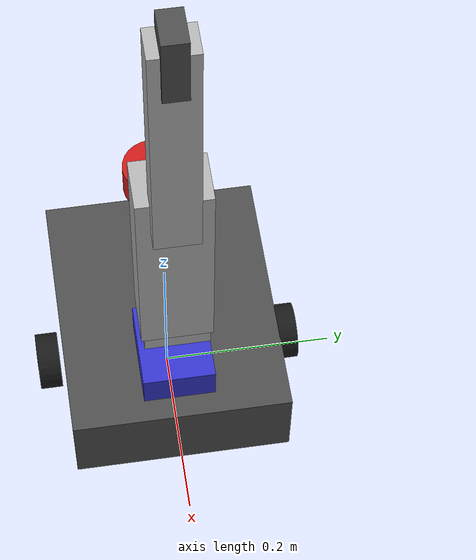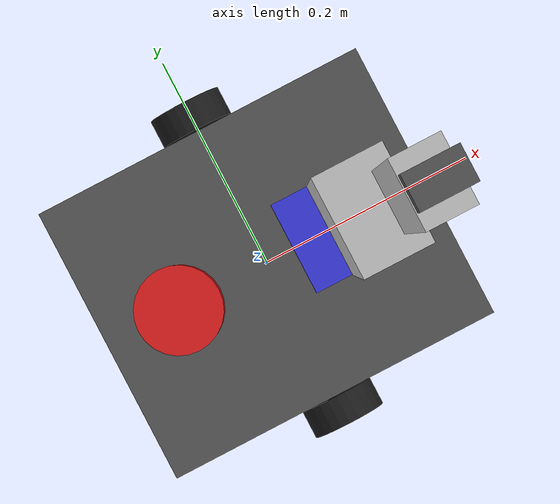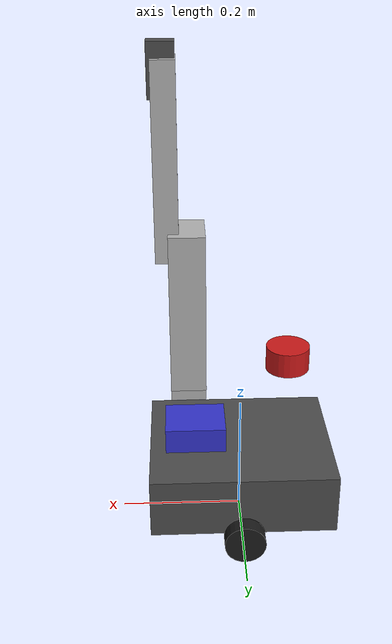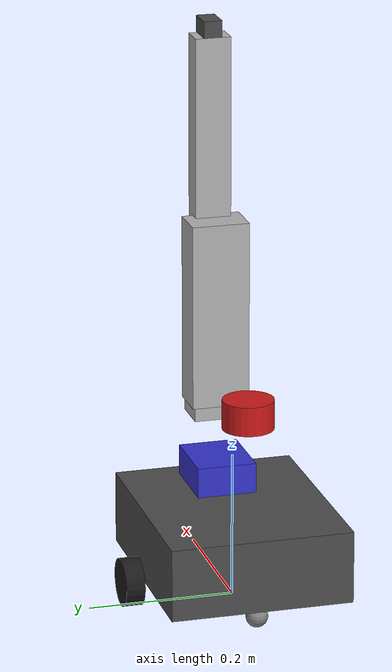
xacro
<?xml version="1.0"?>
<robot xmlns:xacro="http://www.ros.org/wiki/xacro" name="smart_robot_arm">

  <!--  SmartRobotArm v1 Robot Description                          -->
  <!--  Inherited from soma_home_exp_v1 (mobile manipulator URDF).  -->
  <!--  v1 hardware is a FIXED tabletop manipulator: only the       -->
  <!--  RoArm-M2-S (4-DOF) + the overhead Logitech C922 are real.   -->
  <!--  The chassis + LiDAR links are kept here for the optional    -->
  <!--  Gazebo dry-run scene; they do NOT correspond to v1 real     -->
  <!--  hardware. v2/v3 may re-introduce a mobile base.             -->
  <!--  Arm parameters sourced from official Waveshare URDF:        -->
  <!--  github.com/waveshareteam/roarm_ws_em0                       -->

  <!-- ==================== Chassis Parameters ==================== -->
  <xacro:property name="chassis_length" value="0.30"/>
  <xacro:property name="chassis_width"  value="0.25"/>
  <xacro:property name="chassis_height" value="0.10"/>
  <xacro:property name="chassis_mass"   value="3.0"/>

  <xacro:property name="wheel_radius"     value="0.033"/>
  <xacro:property name="wheel_width"      value="0.026"/>
  <xacro:property name="wheel_mass"       value="0.1"/>
  <xacro:property name="wheel_separation" value="0.287"/>
  <xacro:property name="caster_radius"    value="0.015"/>

  <!-- ==================== RoArm-M2-S Parameters (from official URDF) ==================== -->
  <!-- Base to J1 axis height: 123.059mm -->
  <xacro:property name="arm_base_height"    value="0.123059"/>
  <!-- Base X offset: 10mm -->
  <xacro:property name="arm_base_x_offset"  value="0.010"/>
  <!-- Upper arm length (J2 to J3): 236.815mm -->
  <xacro:property name="arm_upper_length"   value="0.236815"/>
  <!-- J2-J3 Y offset: 30.002mm -->
  <xacro:property name="arm_upper_y_offset" value="0.030002"/>
  <!-- Forearm length (J3 to gripper): 215.99mm -->
  <xacro:property name="arm_forearm_length" value="0.21599"/>
  <!-- J3 to TCP: 280.2mm -->
  <xacro:property name="arm_tcp_length"     value="0.2802"/>
  <!-- Gripper offset from J3 -->
  <xacro:property name="gripper_x_offset"   value="0.002906"/>
  <xacro:property name="gripper_z_offset"   value="-0.000667"/>

  <!-- ST3215 servo specs: stall torque 2.94 N·m, no-load speed 4.71 rad/s -->
  <xacro:property name="servo_effort"   value="2.94"/>
  <xacro:property name="servo_velocity" value="4.71"/>

  <!-- ==================== Inertia Macros ==================== -->
  <xacro:macro name="box_inertia" params="m x y z">
    <inertial>
      <mass value="${m}"/>
      <inertia ixx="${m*(y*y+z*z)/12}" ixy="0" ixz="0"
               iyy="${m*(x*x+z*z)/12}" iyz="0"
               izz="${m*(x*x+y*y)/12}"/>
    </inertial>
  </xacro:macro>

  <xacro:macro name="cylinder_inertia" params="m r h">
    <inertial>
      <mass value="${m}"/>
      <inertia ixx="${m*(3*r*r+h*h)/12}" ixy="0" ixz="0"
               iyy="${m*(3*r*r+h*h)/12}" iyz="0"
               izz="${m*r*r/2}"/>
    </inertial>
  </xacro:macro>

  <xacro:macro name="sphere_inertia" params="m r">
    <inertial>
      <mass value="${m}"/>
      <inertia ixx="${2*m*r*r/5}" ixy="0" ixz="0"
               iyy="${2*m*r*r/5}" iyz="0"
               izz="${2*m*r*r/5}"/>
    </inertial>
  </xacro:macro>

  <!-- ==================== Base Link (Chassis) ==================== -->
  <link name="base_footprint"/>

  <link name="base_link">
    <visual>
      <geometry>
        <box size="${chassis_length} ${chassis_width} ${chassis_height}"/>
      </geometry>
      <material name="dark_grey">
        <color rgba="0.3 0.3 0.3 1.0"/>
      </material>
    </visual>
    <collision>
      <geometry>
        <box size="${chassis_length} ${chassis_width} ${chassis_height}"/>
      </geometry>
    </collision>
    <xacro:box_inertia m="${chassis_mass}" x="${chassis_length}" y="${chassis_width}" z="${chassis_height}"/>
  </link>

  <joint name="base_footprint_joint" type="fixed">
    <parent link="base_footprint"/>
    <child link="base_link"/>
    <origin xyz="0 0 ${wheel_radius + chassis_height/2}" rpy="0 0 0"/>
  </joint>

  <!-- ==================== Wheels ==================== -->
  <xacro:macro name="wheel" params="prefix y_offset">
    <link name="${prefix}_wheel">
      <visual>
        <geometry>
          <cylinder radius="${wheel_radius}" length="${wheel_width}"/>
        </geometry>
        <material name="black">
          <color rgba="0.1 0.1 0.1 1.0"/>
        </material>
      </visual>
      <collision>
        <geometry>
          <cylinder radius="${wheel_radius}" length="${wheel_width}"/>
        </geometry>
      </collision>
      <xacro:cylinder_inertia m="${wheel_mass}" r="${wheel_radius}" h="${wheel_width}"/>
    </link>

    <joint name="${prefix}_wheel_joint" type="continuous">
      <parent link="base_link"/>
      <child link="${prefix}_wheel"/>
      <origin xyz="0 ${y_offset} ${-chassis_height/2}" rpy="${-pi/2} 0 0"/>
      <axis xyz="0 0 1"/>
      <dynamics damping="0.01" friction="0.1"/>
    </joint>
  </xacro:macro>

  <xacro:wheel prefix="left"  y_offset="${wheel_separation/2}"/>
  <xacro:wheel prefix="right" y_offset="${-wheel_separation/2}"/>

  <!-- Caster wheel -->
  <link name="caster_wheel">
    <visual>
      <geometry><sphere radius="${caster_radius}"/></geometry>
      <material name="grey"><color rgba="0.5 0.5 0.5 1.0"/></material>
    </visual>
    <collision>
      <geometry><sphere radius="${caster_radius}"/></geometry>
    </collision>
    <xacro:sphere_inertia m="0.05" r="${caster_radius}"/>
  </link>

  <joint name="caster_wheel_joint" type="fixed">
    <parent link="base_link"/>
    <child link="caster_wheel"/>
    <origin xyz="${-chassis_length/2 + 0.03} 0 ${-chassis_height/2 - wheel_radius + caster_radius}" rpy="0 0 0"/>
  </joint>

  <!-- ==================== LiDAR (RPLiDAR A1) ==================== -->
  <link name="lidar_link">
    <visual>
      <geometry><cylinder radius="0.035" length="0.04"/></geometry>
      <material name="red"><color rgba="0.8 0.1 0.1 1.0"/></material>
    </visual>
    <collision>
      <geometry><cylinder radius="0.035" length="0.04"/></geometry>
    </collision>
    <xacro:cylinder_inertia m="0.17" r="0.035" h="0.04"/>
  </link>

  <joint name="lidar_joint" type="fixed">
    <parent link="base_link"/>
    <child link="lidar_link"/>
    <origin xyz="${-chassis_length/4} 0 ${chassis_height/2 + arm_base_height + 0.03}" rpy="0 0 0"/>
  </joint>

  <!-- ==================== Camera (RPi Camera Module 3) ==================== -->
  <link name="camera_link">
    <visual>
      <geometry><box size="0.025 0.024 0.012"/></geometry>
      <material name="green"><color rgba="0.1 0.6 0.1 1.0"/></material>
    </visual>
    <collision>
      <geometry><box size="0.025 0.024 0.012"/></geometry>
    </collision>
    <xacro:box_inertia m="0.02" x="0.025" y="0.024" z="0.012"/>
  </link>

  <link name="camera_optical_frame"/>

  <joint name="camera_joint" type="fixed">
    <parent link="base_link"/>
    <child link="camera_link"/>
    <origin xyz="${chassis_length/4} 0 ${chassis_height/2 + 0.15}" rpy="0 0.3 0"/>
  </joint>

  <joint name="camera_optical_joint" type="fixed">
    <parent link="camera_link"/>
    <child link="camera_optical_frame"/>
    <origin xyz="0 0 0" rpy="${-pi/2} 0 ${-pi/2}"/>
  </joint>

  <!--  RoArm-M2-S Arm (4-DOF)                                     -->
  <!--  Kinematic chain matches official Waveshare URDF exactly     -->
  <!--  Joint names kept compatible with roarm_ws_em0               -->

  <!-- Arm base: fixed to chassis top plate, front-center -->
  <link name="arm_base_link">
    <visual>
      <geometry><box size="0.0985 0.0816 0.0836"/></geometry>
      <material name="blue"><color rgba="0.2 0.2 0.8 1.0"/></material>
    </visual>
    <collision>
      <geometry><box size="0.0985 0.0816 0.0836"/></geometry>
    </collision>
    <inertial>
      <origin xyz="0.003738 0 0.026427"/>
      <mass value="0.3264"/>
      <inertia ixx="0.000224" ixy="0" ixz="-0.0000299"
               iyy="0.000287" iyz="0"
               izz="0.000350"/>
    </inertial>
  </link>

  <joint name="arm_base_joint" type="fixed">
    <parent link="base_link"/>
    <child link="arm_base_link"/>
    <origin xyz="${chassis_length/4} 0 ${chassis_height/2}" rpy="0 0 0"/>
  </joint>

  <!-- Joint 1: Base rotation — 360° (±180°) around Z axis -->
  <link name="arm_link1">
    <visual>
      <geometry><box size="0.0548 0.0724 0.0496"/></geometry>
      <material name="silver"><color rgba="0.7 0.7 0.7 1.0"/></material>
    </visual>
    <collision>
      <geometry><box size="0.0548 0.0724 0.0496"/></geometry>
    </collision>
    <inertial>
      <origin xyz="0 0.0000097 -0.014667"/>
      <mass value="0.0929"/>
      <inertia ixx="0.0000609" ixy="0" ixz="0"
               iyy="0.0000253" iyz="0"
               izz="0.0000488"/>
    </inertial>
  </link>

  <joint name="base_link_to_link1" type="revolute">
    <parent link="arm_base_link"/>
    <child link="arm_link1"/>
    <origin xyz="${arm_base_x_offset} 0 ${arm_base_height}" rpy="0 0 0"/>
    <axis xyz="0 0 -1"/>
    <limit lower="${-pi}" upper="${pi}" effort="${servo_effort}" velocity="${servo_velocity}"/>
    <dynamics damping="0.1" friction="0.05"/>
  </joint>

  <!-- Joint 2: Shoulder pitch — 180° (±90°) -->
  <link name="arm_link2">
    <visual>
      <origin xyz="0.122021 0.000066 -0.000095"/>
      <geometry><box size="0.2568 0.0555 0.0790"/></geometry>
      <material name="silver"/>
    </visual>
    <collision>
      <origin xyz="0.122021 0 0"/>
      <geometry><box size="0.2568 0.0555 0.0790"/></geometry>
    </collision>
    <inertial>
      <origin xyz="0.122021 0.000066 -0.000095"/>
      <mass value="0.0896"/>
      <inertia ixx="0.0000263" ixy="-0.00000255" ixz="0"
               iyy="0.000350" iyz="0"
               izz="0.000333"/>
    </inertial>
  </link>

  <joint name="link1_to_link2" type="revolute">
    <parent link="arm_link1"/>
    <child link="arm_link2"/>
    <origin xyz="0 0 0" rpy="${-pi/2} ${-pi/2} 0"/>
    <axis xyz="0 0 -1"/>
    <limit lower="${-pi/2}" upper="${pi/2}" effort="${servo_effort*2}" velocity="${servo_velocity}"/>
    <dynamics damping="0.1" friction="0.05"/>
  </joint>

  <!-- Joint 3: Elbow pitch — from -57.3° to +180° -->
  <link name="arm_link3">
    <visual>
      <origin xyz="-0.000763 -0.114420 -0.000177"/>
      <geometry><box size="0.0355 0.2939 0.0488"/></geometry>
      <material name="silver"/>
    </visual>
    <collision>
      <origin xyz="0 -0.114420 0"/>
      <geometry><box size="0.0355 0.2939 0.0488"/></geometry>
    </collision>
    <inertial>
      <origin xyz="-0.000763 -0.114420 -0.000177"/>
      <mass value="0.1230"/>
      <inertia ixx="0.000104" ixy="0" ixz="0"
               iyy="0.0000146" iyz="0"
               izz="0.000104"/>
    </inertial>
  </link>

  <joint name="link2_to_link3" type="revolute">
    <parent link="arm_link2"/>
    <child link="arm_link3"/>
    <origin xyz="${arm_upper_length} ${arm_upper_y_offset} 0" rpy="0 0 ${pi/2}"/>
    <axis xyz="0 0 1"/>
    <limit lower="-1.0" upper="${pi}" effort="${servo_effort}" velocity="${servo_velocity}"/>
    <dynamics damping="0.08" friction="0.04"/>
  </joint>

  <!-- Joint 4: Gripper — 0 to 85.9° (0=closed, 1.5rad=open) -->
  <link name="gripper_link">
    <visual>
      <origin xyz="0.028886 -0.000777 -0.000780"/>
      <geometry><box size="0.0779 0.0252 0.0394"/></geometry>
      <material name="dark_grey"><color rgba="0.3 0.3 0.3 1.0"/></material>
    </visual>
    <collision>
      <origin xyz="0.028886 0 0"/>
      <geometry><box size="0.0779 0.0252 0.0394"/></geometry>
    </collision>
    <inertial>
      <origin xyz="0.028886 -0.000777 -0.000780"/>
      <mass value="0.00366"/>
      <inertia ixx="0.00000115" ixy="0.000000131" ixz="0"
               iyy="0.00000233" iyz="0"
               izz="0.00000147"/>
    </inertial>
  </link>

  <joint name="link3_to_gripper_link" type="revolute">
    <parent link="arm_link3"/>
    <child link="gripper_link"/>
    <origin xyz="${gripper_x_offset} ${-arm_forearm_length} ${gripper_z_offset}" rpy="${-pi/2} 0 ${-pi/2}"/>
    <axis xyz="0 0 1"/>
    <limit lower="0" upper="1.5" effort="${servo_effort}" velocity="${servo_velocity}"/>
    <dynamics damping="0.05" friction="0.03"/>
  </joint>

  <!-- TCP (Tool Center Point) — the actual grasp reference point -->
  <link name="hand_tcp"/>

  <joint name="link3_to_hand_tcp" type="fixed">
    <parent link="arm_link3"/>
    <child link="hand_tcp"/>
    <origin xyz="0.002 ${-arm_tcp_length} 0" rpy="${-pi/2} 0 ${-pi/2}"/>
  </joint>

  <!-- ==================== Gazebo Plugins ==================== -->

  <!-- Differential drive -->
  <gazebo>
    <plugin filename="gz-sim-diff-drive-system"
            name="gz::sim::systems::DiffDrive">
      <left_joint>left_wheel_joint</left_joint>
      <right_joint>right_wheel_joint</right_joint>
      <wheel_separation>${wheel_separation}</wheel_separation>
      <wheel_radius>${wheel_radius}</wheel_radius>
      <max_linear_acceleration>1.0</max_linear_acceleration>
      <max_angular_acceleration>2.0</max_angular_acceleration>
      <topic>cmd_vel</topic>
      <odom_topic>odom</odom_topic>
      <frame_id>odom</frame_id>
      <child_frame_id>base_footprint</child_frame_id>
      <odom_publish_frequency>20</odom_publish_frequency>
    </plugin>
  </gazebo>

  <!-- Joint state publisher for arm -->
  <gazebo>
    <plugin filename="gz-sim-joint-state-publisher-system"
            name="gz::sim::systems::JointStatePublisher">
      <topic>joint_states</topic>
      <joint_name>base_link_to_link1</joint_name>
      <joint_name>link1_to_link2</joint_name>
      <joint_name>link2_to_link3</joint_name>
      <joint_name>link3_to_gripper_link</joint_name>
    </plugin>
  </gazebo>

  <!-- Joint position controller for arm -->
  <gazebo>
    <plugin filename="gz-sim-joint-position-controller-system"
            name="gz::sim::systems::JointPositionController">
      <joint_name>base_link_to_link1</joint_name>
      <p_gain>10</p_gain>
      <i_gain>0.1</i_gain>
      <d_gain>0.5</d_gain>
      <topic>arm/joint1_cmd</topic>
    </plugin>
    <plugin filename="gz-sim-joint-position-controller-system"
            name="gz::sim::systems::JointPositionController">
      <joint_name>link1_to_link2</joint_name>
      <p_gain>20</p_gain>
      <i_gain>0.1</i_gain>
      <d_gain>1.0</d_gain>
      <topic>arm/joint2_cmd</topic>
    </plugin>
    <plugin filename="gz-sim-joint-position-controller-system"
            name="gz::sim::systems::JointPositionController">
      <joint_name>link2_to_link3</joint_name>
      <p_gain>15</p_gain>
      <i_gain>0.1</i_gain>
      <d_gain>0.8</d_gain>
      <topic>arm/joint3_cmd</topic>
    </plugin>
    <plugin filename="gz-sim-joint-position-controller-system"
            name="gz::sim::systems::JointPositionController">
      <joint_name>link3_to_gripper_link</joint_name>
      <p_gain>5</p_gain>
      <i_gain>0.05</i_gain>
      <d_gain>0.3</d_gain>
      <topic>arm/gripper_cmd</topic>
    </plugin>
  </gazebo>

  <!-- LiDAR sensor (RPLiDAR A1) -->
  <gazebo reference="lidar_link">
    <sensor name="lidar" type="gpu_lidar">
      <topic>scan</topic>
      <update_rate>10</update_rate>
      <lidar>
        <scan>
          <horizontal>
            <samples>360</samples>
            <resolution>1</resolution>
            <min_angle>-3.14159</min_angle>
            <max_angle>3.14159</max_angle>
          </horizontal>
        </scan>
        <range>
          <min>0.15</min>
          <max>12.0</max>
          <resolution>0.01</resolution>
        </range>
      </lidar>
      <always_on>true</always_on>
      <visualize>true</visualize>
    </sensor>
  </gazebo>

  <!-- RGB Camera (RPi Camera Module 3: 66° FOV) -->
  <gazebo reference="camera_link">
    <sensor name="camera" type="camera">
      <topic>camera/image_raw</topic>
      <update_rate>30</update_rate>
      <camera>
        <horizontal_fov>1.152</horizontal_fov>
        <image>
          <width>640</width>
          <height>480</height>
          <format>R8G8B8</format>
        </image>
        <clip>
          <near>0.05</near>
          <far>10.0</far>
        </clip>
      </camera>
      <always_on>true</always_on>
      <visualize>true</visualize>
    </sensor>
  </gazebo>

  <!-- Wheel friction -->
  <gazebo reference="left_wheel">
    <mu1>1.0</mu1><mu2>1.0</mu2>
  </gazebo>
  <gazebo reference="right_wheel">
    <mu1>1.0</mu1><mu2>1.0</mu2>
  </gazebo>
  <gazebo reference="caster_wheel">
    <mu1>0.01</mu1><mu2>0.01</mu2>
  </gazebo>

</robot>
